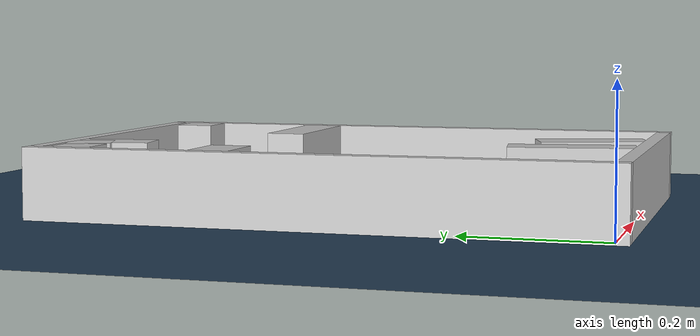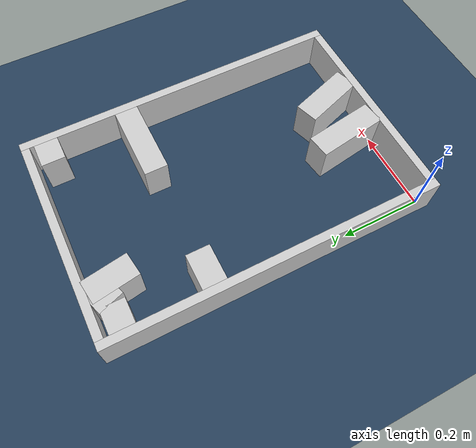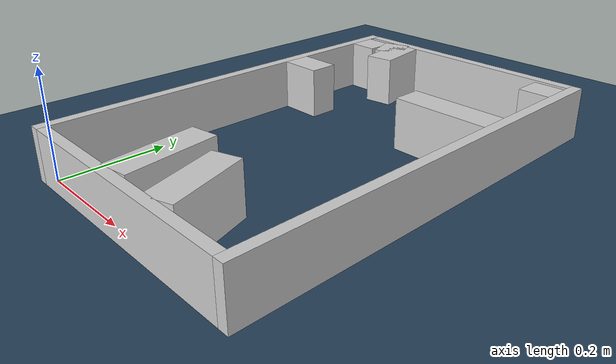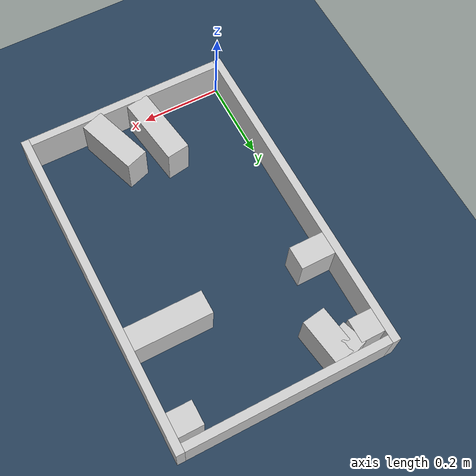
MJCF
<?xml version="1.0" ?>
<mujoco model="generated_real_template">
  <compiler angle="degree"/>
  <option timestep="0.002" integrator="implicitfast" iterations="100" cone="elliptic"/>
  <default>
    <geom density="1"/>
  </default>
  <asset>
    <texture builtin="gradient" height="3072" rgb1="0.3 0.5 0.7" rgb2="0 0 0" type="skybox" width="512"/>
    <texture builtin="checker" height="300" mark="edge" markrgb="0.8 0.8 0.8" name="groundplane" rgb1="0.2 0.3 0.4" rgb2="0.1 0.2 0.3" type="2d" width="300"/>
    <material name="groundplane" reflectance="0.2" texrepeat="5 5" texture="groundplane" texuniform="true"/>
  </asset>
  <worldbody>
    <light dir="0 0 -1" directional="true" pos="0 0 1.5"/>
    <geom name="floor" type="plane" condim="4" friction="0.5 0.005 0.001" material="groundplane" size="0 0 0.05"/>
    <body name="walls">
      <geom name="wall_boundary_left" type="box" condim="4" friction="1.0 0.005 0.0001" rgba="0.8 0.8 0.8 1" pos="-0.010000 0.387500 0.050000" euler="0 0 0.000000" size="0.010000 0.407500 0.050000"/>
      <geom name="wall_boundary_right" type="box" condim="4" friction="1.0 0.005 0.0001" rgba="0.8 0.8 0.8 1" pos="0.500000 0.387500 0.050000" euler="0 0 0.000000" size="0.010000 0.407500 0.050000"/>
      <geom name="wall_boundary_bottom" type="box" condim="4" friction="1.0 0.005 0.0001" rgba="0.8 0.8 0.8 1" pos="0.245000 -0.010000 0.050000" euler="0 0 0.000000" size="0.245000 0.010000 0.050000"/>
      <geom name="wall_boundary_top" type="box" condim="4" friction="1.0 0.005 0.0001" rgba="0.8 0.8 0.8 1" pos="0.245000 0.785000 0.050000" euler="0 0 0.000000" size="0.245000 0.010000 0.050000"/>
      <geom name="wall_inner_1_1" type="box" condim="4" friction="1.0 0.005 0.0001" rgba="0.8 0.8 0.8 1" pos="0.085169 0.745560 0.050000" euler="0 0 -71.447802" size="0.031053 0.028500 0.050000"/>
      <geom name="wall_inner_1_2" type="box" condim="4" friction="1.0 0.005 0.0001" rgba="0.8 0.8 0.8 1" pos="0.310796 0.073267 0.050000" euler="0 0 -71.447802" size="0.077284 0.028500 0.050000"/>
      <geom name="wall_inner_2_1" type="box" condim="4" friction="1.0 0.005 0.0001" rgba="0.8 0.8 0.8 1" pos="0.108801 0.719869 0.050000" euler="0 0 -81.467840" size="0.055748 0.028500 0.050000"/>
      <geom name="wall_inner_2_2" type="box" condim="4" friction="1.0 0.005 0.0001" rgba="0.8 0.8 0.8 1" pos="0.203917 0.085867 0.050000" euler="0 0 -81.467840" size="0.086828 0.028500 0.050000"/>
      <geom name="wall_inner_3_1" type="box" condim="4" friction="1.0 0.005 0.0001" rgba="0.8 0.8 0.8 1" pos="0.029074 0.735816 0.050000" euler="0 0 0.000000" size="0.029074 0.028500 0.050000"/>
      <geom name="wall_inner_3_2" type="box" condim="4" friction="1.0 0.005 0.0001" rgba="0.8 0.8 0.8 1" pos="0.459873 0.735816 0.050000" euler="0 0 0.000000" size="0.030127 0.028500 0.050000"/>
      <geom name="wall_inner_4_1" type="box" condim="4" friction="1.0 0.005 0.0001" rgba="0.8 0.8 0.8 1" pos="0.042196 0.533591 0.050000" euler="0 0 0.000000" size="0.042196 0.028500 0.050000"/>
      <geom name="wall_inner_4_2" type="box" condim="4" friction="1.0 0.005 0.0001" rgba="0.8 0.8 0.8 1" pos="0.396587 0.533591 0.050000" euler="0 0 0.000000" size="0.093413 0.028500 0.050000"/>
    </body>
  </worldbody>
</mujoco>
